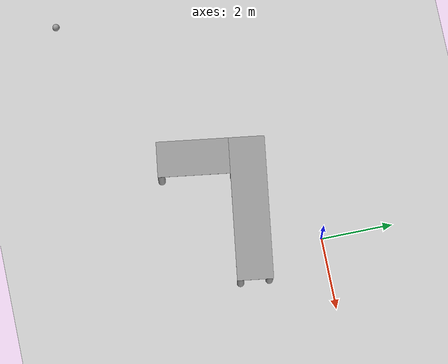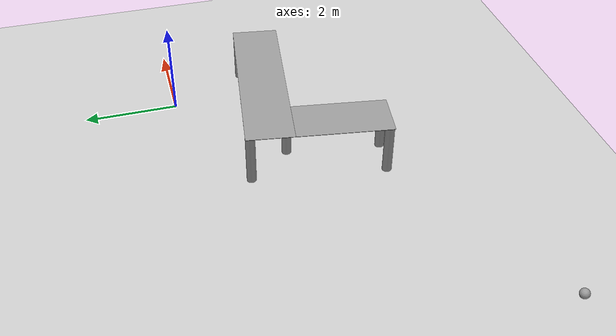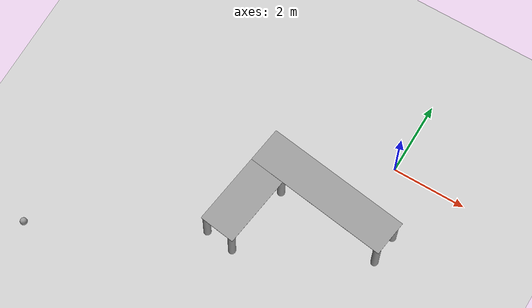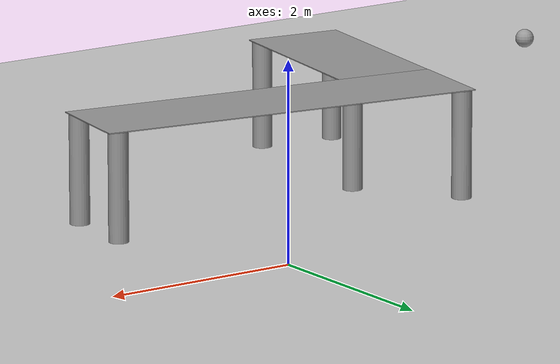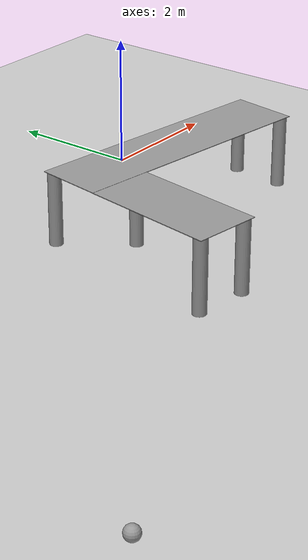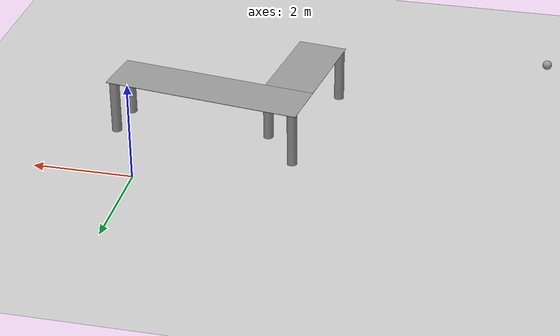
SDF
<sdf version="1.6">
 <world name="default">
  <model name="ground_plane">
   <static>1</static>
   <link name="link">
    <collision name="collision">
     <geometry><plane><normal>0 0 1</normal><size>100 100</size></plane></geometry>
     <surface>
      <contact><collide_bitmask>65535</collide_bitmask></contact>
      <friction><ode><mu>100</mu><mu2>50</mu2></ode></friction>
     </surface>
    </collision>
    <visual name="visual">
     <cast_shadows>0</cast_shadows>
     <geometry><plane><normal>0 0 1</normal><size>100 100</size></plane></geometry>
     <material>
      <script><uri>file://media/materials/scripts/gazebo.material</uri><name>Gazebo/Grey</name></script>
     </material>
    </visual>
   </link>
  </model>
  <model name="mytable_clone">
   <link name="link_0">
    <pose>-0.78753 0.46744 0.418 0 -0 0</pose>
    <inertial>
     <mass>1</mass>
     <inertia>
      <ixx>0.166667</ixx>
      <ixy>0</ixy>
      <ixz>0</ixz>
      <iyy>0.166667</iyy>
      <iyz>0</iyz>
      <izz>0.166667</izz>
     </inertia>
    </inertial>
    <visual name="visual">
     <geometry><box><size>1 4 0.01</size></box></geometry>
     <material>
      <lighting>1</lighting>
      <script><uri>file://media/materials/scripts/gazebo.material</uri><name>Gazebo/Grey</name></script>
      <shader type="pixel"><normal_map>__default__</normal_map></shader>
      <ambient>0.3 0.3 0.3 1</ambient>
      <diffuse>0.7 0.7 0.7 1</diffuse>
      <specular>0.01 0.01 0.01 1</specular>
      <emissive>0 0 0 1</emissive>
     </material>
    </visual>
    <collision name="collision">
     <geometry><box><size>1 4 0.01</size></box></geometry>
     <surface>
      <friction>
       <ode><mu>1</mu><mu2>1</mu2><fdir1>0 0 0</fdir1><slip1>0</slip1><slip2>0</slip2></ode>
       <torsional>
        <coefficient>1</coefficient>
        <patch_radius>0</patch_radius>
        <surface_radius>0</surface_radius>
        <use_patch_radius>1</use_patch_radius>
        <ode><slip>0</slip></ode>
       </torsional>
      </friction>
      <bounce><restitution_coefficient>0</restitution_coefficient><threshold>1e+06</threshold></bounce>
      <contact>
       <collide_without_contact>0</collide_without_contact>
       <collide_without_contact_bitmask>1</collide_without_contact_bitmask>
       <collide_bitmask>1</collide_bitmask>
       <ode>
        <soft_cfm>0</soft_cfm>
        <soft_erp>0.2</soft_erp>
        <kp>1e+13</kp>
        <kd>1</kd>
        <max_vel>0.01</max_vel>
        <min_depth>0</min_depth>
       </ode>
       <bullet>
        <split_impulse>1</split_impulse>
        <split_impulse_penetration_threshold>-0.01</split_impulse_penetration_threshold>
        <soft_cfm>0</soft_cfm>
        <soft_erp>0.2</soft_erp>
        <kp>1e+13</kp>
        <kd>1</kd>
       </bullet>
      </contact>
     </surface>
    </collision>
   </link>
   <link name="link_0_clone">
    <pose>0.712518 -1.03246 0.416 0 -0 1.5707</pose>
    <inertial>
     <mass>1</mass>
     <inertia>
      <ixx>0.166667</ixx>
      <ixy>0</ixy>
      <ixz>0</ixz>
      <iyy>0.166667</iyy>
      <iyz>0</iyz>
      <izz>0.166667</izz>
     </inertia>
    </inertial>
    <visual name="visual">
     <geometry><box><size>1 2 0.01</size></box></geometry>
     <material>
      <lighting>1</lighting>
      <script><uri>file://media/materials/scripts/gazebo.material</uri><name>Gazebo/Grey</name></script>
      <shader type="pixel"><normal_map>__default__</normal_map></shader>
      <ambient>0.3 0.3 0.3 1</ambient>
      <diffuse>0.7 0.7 0.7 1</diffuse>
      <specular>0.01 0.01 0.01 1</specular>
      <emissive>0 0 0 1</emissive>
     </material>
    </visual>
    <collision name="collision">
     <geometry><box><size>1 2 0.01</size></box></geometry>
     <surface>
      <friction>
       <ode><mu>1</mu><mu2>1</mu2><fdir1>0 0 0</fdir1><slip1>0</slip1><slip2>0</slip2></ode>
       <torsional>
        <coefficient>1</coefficient>
        <patch_radius>0</patch_radius>
        <surface_radius>0</surface_radius>
        <use_patch_radius>1</use_patch_radius>
        <ode><slip>0</slip></ode>
       </torsional>
      </friction>
      <bounce><restitution_coefficient>0</restitution_coefficient><threshold>1e+06</threshold></bounce>
      <contact>
       <collide_without_contact>0</collide_without_contact>
       <collide_without_contact_bitmask>1</collide_without_contact_bitmask>
       <collide_bitmask>1</collide_bitmask>
       <ode>
        <soft_cfm>0</soft_cfm>
        <soft_erp>0.2</soft_erp>
        <kp>1e+13</kp>
        <kd>1</kd>
        <max_vel>0.01</max_vel>
        <min_depth>0</min_depth>
       </ode>
       <bullet>
        <split_impulse>1</split_impulse>
        <split_impulse_penetration_threshold>-0.01</split_impulse_penetration_threshold>
        <soft_cfm>0</soft_cfm>
        <soft_erp>0.2</soft_erp>
        <kp>1e+13</kp>
        <kd>1</kd>
       </bullet>
      </contact>
     </surface>
    </collision>
   </link>
   <link name="link_1">
    <pose>-1.18753 2.32744 -0.139 0 -0 0</pose>
    <inertial>
     <mass>1</mass>
     <inertia><ixx>0.145833</ixx><ixy>0</ixy><ixz>0</ixz><iyy>0.145833</iyy><iyz>0</iyz><izz>0.125</izz></inertia>
    </inertial>
    <visual name="visual">
     <geometry><cylinder><radius>0.1</radius><length>1.1</length></cylinder></geometry>
     <material>
      <lighting>1</lighting>
      <script><uri>file://media/materials/scripts/gazebo.material</uri><name>Gazebo/Grey</name></script>
      <shader type="pixel"><normal_map>__default__</normal_map></shader>
      <ambient>0.3 0.3 0.3 1</ambient>
      <diffuse>0.7 0.7 0.7 1</diffuse>
      <specular>0.01 0.01 0.01 1</specular>
      <emissive>0 0 0 1</emissive>
     </material>
    </visual>
    <collision name="collision">
     <geometry><cylinder><radius>0.1</radius><length>1.1</length></cylinder></geometry>
     <surface>
      <friction>
       <ode><mu>1</mu><mu2>1</mu2><fdir1>0 0 0</fdir1><slip1>0</slip1><slip2>0</slip2></ode>
       <torsional>
        <coefficient>1</coefficient>
        <patch_radius>0</patch_radius>
        <surface_radius>0</surface_radius>
        <use_patch_radius>1</use_patch_radius>
        <ode><slip>0</slip></ode>
       </torsional>
      </friction>
      <bounce><restitution_coefficient>0</restitution_coefficient><threshold>1e+06</threshold></bounce>
      <contact>
       <collide_without_contact>0</collide_without_contact>
       <collide_without_contact_bitmask>1</collide_without_contact_bitmask>
       <collide_bitmask>1</collide_bitmask>
       <ode>
        <soft_cfm>0</soft_cfm>
        <soft_erp>0.2</soft_erp>
        <kp>1e+13</kp>
        <kd>1</kd>
        <max_vel>0.01</max_vel>
        <min_depth>0</min_depth>
       </ode>
       <bullet>
        <split_impulse>1</split_impulse>
        <split_impulse_penetration_threshold>-0.01</split_impulse_penetration_threshold>
        <soft_cfm>0</soft_cfm>
        <soft_erp>0.2</soft_erp>
        <kp>1e+13</kp>
        <kd>1</kd>
       </bullet>
      </contact>
     </surface>
    </collision>
   </link>
   <link name="link_1_clone">
    <pose>-1.18753 -1.43256 -0.139 0 -0 0</pose>
    <inertial>
     <mass>1</mass>
     <inertia><ixx>0.145833</ixx><ixy>0</ixy><ixz>0</ixz><iyy>0.145833</iyy><iyz>0</iyz><izz>0.125</izz></inertia>
    </inertial>
    <visual name="visual">
     <geometry><cylinder><radius>0.1</radius><length>1.1</length></cylinder></geometry>
     <material>
      <lighting>1</lighting>
      <script><uri>file://media/materials/scripts/gazebo.material</uri><name>Gazebo/Grey</name></script>
      <shader type="pixel"><normal_map>__default__</normal_map></shader>
      <ambient>0.3 0.3 0.3 1</ambient>
      <diffuse>0.7 0.7 0.7 1</diffuse>
      <specular>0.01 0.01 0.01 1</specular>
      <emissive>0 0 0 1</emissive>
     </material>
    </visual>
    <collision name="collision">
     <geometry><cylinder><radius>0.1</radius><length>1.1</length></cylinder></geometry>
     <surface>
      <friction>
       <ode><mu>1</mu><mu2>1</mu2><fdir1>0 0 0</fdir1><slip1>0</slip1><slip2>0</slip2></ode>
       <torsional>
        <coefficient>1</coefficient>
        <patch_radius>0</patch_radius>
        <surface_radius>0</surface_radius>
        <use_patch_radius>1</use_patch_radius>
        <ode><slip>0</slip></ode>
       </torsional>
      </friction>
      <bounce><restitution_coefficient>0</restitution_coefficient><threshold>1e+06</threshold></bounce>
      <contact>
       <collide_without_contact>0</collide_without_contact>
       <collide_without_contact_bitmask>1</collide_without_contact_bitmask>
       <collide_bitmask>1</collide_bitmask>
       <ode>
        <soft_cfm>0</soft_cfm>
        <soft_erp>0.2</soft_erp>
        <kp>1e+13</kp>
        <kd>1</kd>
        <max_vel>0.01</max_vel>
        <min_depth>0</min_depth>
       </ode>
       <bullet>
        <split_impulse>1</split_impulse>
        <split_impulse_penetration_threshold>-0.01</split_impulse_penetration_threshold>
        <soft_cfm>0</soft_cfm>
        <soft_erp>0.2</soft_erp>
        <kp>1e+13</kp>
        <kd>1</kd>
       </bullet>
      </contact>
     </surface>
    </collision>
   </link>
   <link name="link_1_clone_0">
    <pose>1.61257 -1.43256 -0.139 0 -0 0</pose>
    <inertial>
     <mass>1</mass>
     <inertia><ixx>0.145833</ixx><ixy>0</ixy><ixz>0</ixz><iyy>0.145833</iyy><iyz>0</iyz><izz>0.125</izz></inertia>
    </inertial>
    <visual name="visual">
     <geometry><cylinder><radius>0.1</radius><length>1.1</length></cylinder></geometry>
     <material>
      <lighting>1</lighting>
      <script><uri>file://media/materials/scripts/gazebo.material</uri><name>Gazebo/Grey</name></script>
      <shader type="pixel"><normal_map>__default__</normal_map></shader>
      <ambient>0.3 0.3 0.3 1</ambient>
      <diffuse>0.7 0.7 0.7 1</diffuse>
      <specular>0.01 0.01 0.01 1</specular>
      <emissive>0 0 0 1</emissive>
     </material>
    </visual>
    <collision name="collision">
     <geometry><cylinder><radius>0.1</radius><length>1.1</length></cylinder></geometry>
     <surface>
      <friction>
       <ode><mu>1</mu><mu2>1</mu2><fdir1>0 0 0</fdir1><slip1>0</slip1><slip2>0</slip2></ode>
       <torsional>
        <coefficient>1</coefficient>
        <patch_radius>0</patch_radius>
        <surface_radius>0</surface_radius>
        <use_patch_radius>1</use_patch_radius>
        <ode><slip>0</slip></ode>
       </torsional>
      </friction>
      <bounce><restitution_coefficient>0</restitution_coefficient><threshold>1e+06</threshold></bounce>
      <contact>
       <collide_without_contact>0</collide_without_contact>
       <collide_without_contact_bitmask>1</collide_without_contact_bitmask>
       <collide_bitmask>1</collide_bitmask>
       <ode>
        <soft_cfm>0</soft_cfm>
        <soft_erp>0.2</soft_erp>
        <kp>1e+13</kp>
        <kd>1</kd>
        <max_vel>0.01</max_vel>
        <min_depth>0</min_depth>
       </ode>
       <bullet>
        <split_impulse>1</split_impulse>
        <split_impulse_penetration_threshold>-0.01</split_impulse_penetration_threshold>
        <soft_cfm>0</soft_cfm>
        <soft_erp>0.2</soft_erp>
        <kp>1e+13</kp>
        <kd>1</kd>
       </bullet>
      </contact>
     </surface>
    </collision>
   </link>
   <link name="link_1_clone_1">
    <pose>1.61257 -0.632367 -0.139 0 -0 0</pose>
    <inertial>
     <mass>1</mass>
     <inertia><ixx>0.145833</ixx><ixy>0</ixy><ixz>0</ixz><iyy>0.145833</iyy><iyz>0</iyz><izz>0.125</izz></inertia>
    </inertial>
    <visual name="visual">
     <geometry><cylinder><radius>0.1</radius><length>1.1</length></cylinder></geometry>
     <material>
      <lighting>1</lighting>
      <script><uri>file://media/materials/scripts/gazebo.material</uri><name>Gazebo/Grey</name></script>
      <shader type="pixel"><normal_map>__default__</normal_map></shader>
      <ambient>0.3 0.3 0.3 1</ambient>
      <diffuse>0.7 0.7 0.7 1</diffuse>
      <specular>0.01 0.01 0.01 1</specular>
      <emissive>0 0 0 1</emissive>
     </material>
    </visual>
    <collision name="collision">
     <geometry><cylinder><radius>0.1</radius><length>1.1</length></cylinder></geometry>
     <surface>
      <friction>
       <ode><mu>1</mu><mu2>1</mu2><fdir1>0 0 0</fdir1><slip1>0</slip1><slip2>0</slip2></ode>
       <torsional>
        <coefficient>1</coefficient>
        <patch_radius>0</patch_radius>
        <surface_radius>0</surface_radius>
        <use_patch_radius>1</use_patch_radius>
        <ode><slip>0</slip></ode>
       </torsional>
      </friction>
      <bounce><restitution_coefficient>0</restitution_coefficient><threshold>1e+06</threshold></bounce>
      <contact>
       <collide_without_contact>0</collide_without_contact>
       <collide_without_contact_bitmask>1</collide_without_contact_bitmask>
       <collide_bitmask>1</collide_bitmask>
       <ode>
        <soft_cfm>0</soft_cfm>
        <soft_erp>0.2</soft_erp>
        <kp>1e+13</kp>
        <kd>1</kd>
        <max_vel>0.01</max_vel>
        <min_depth>0</min_depth>
       </ode>
       <bullet>
        <split_impulse>1</split_impulse>
        <split_impulse_penetration_threshold>-0.01</split_impulse_penetration_threshold>
        <soft_cfm>0</soft_cfm>
        <soft_erp>0.2</soft_erp>
        <kp>1e+13</kp>
        <kd>1</kd>
       </bullet>
      </contact>
     </surface>
    </collision>
   </link>
   <link name="link_1_clone_2">
    <pose>-0.38753 2.36744 -0.139 0 -0 0</pose>
    <inertial>
     <mass>1</mass>
     <inertia><ixx>0.145833</ixx><ixy>0</ixy><ixz>0</ixz><iyy>0.145833</iyy><iyz>0</iyz><izz>0.125</izz></inertia>
    </inertial>
    <visual name="visual">
     <geometry><cylinder><radius>0.1</radius><length>1.1</length></cylinder></geometry>
     <material>
      <lighting>1</lighting>
      <script><uri>file://media/materials/scripts/gazebo.material</uri><name>Gazebo/Grey</name></script>
      <shader type="pixel"><normal_map>__default__</normal_map></shader>
      <ambient>0.3 0.3 0.3 1</ambient>
      <diffuse>0.7 0.7 0.7 1</diffuse>
      <specular>0.01 0.01 0.01 1</specular>
      <emissive>0 0 0 1</emissive>
     </material>
    </visual>
    <collision name="collision">
     <geometry><cylinder><radius>0.1</radius><length>1.1</length></cylinder></geometry>
     <surface>
      <friction>
       <ode><mu>1</mu><mu2>1</mu2><fdir1>0 0 0</fdir1><slip1>0</slip1><slip2>0</slip2></ode>
       <torsional>
        <coefficient>1</coefficient>
        <patch_radius>0</patch_radius>
        <surface_radius>0</surface_radius>
        <use_patch_radius>1</use_patch_radius>
        <ode><slip>0</slip></ode>
       </torsional>
      </friction>
      <bounce><restitution_coefficient>0</restitution_coefficient><threshold>1e+06</threshold></bounce>
      <contact>
       <collide_without_contact>0</collide_without_contact>
       <collide_without_contact_bitmask>1</collide_without_contact_bitmask>
       <collide_bitmask>1</collide_bitmask>
       <ode>
        <soft_cfm>0</soft_cfm>
        <soft_erp>0.2</soft_erp>
        <kp>1e+13</kp>
        <kd>1</kd>
        <max_vel>0.01</max_vel>
        <min_depth>0</min_depth>
       </ode>
       <bullet>
        <split_impulse>1</split_impulse>
        <split_impulse_penetration_threshold>-0.01</split_impulse_penetration_threshold>
        <soft_cfm>0</soft_cfm>
        <soft_erp>0.2</soft_erp>
        <kp>1e+13</kp>
        <kd>1</kd>
       </bullet>
      </contact>
     </surface>
    </collision>
   </link>
   <link name="link_1_clone_3">
    <pose>-0.38753 -0.632367 -0.139 0 -0 0</pose>
    <inertial>
     <mass>1</mass>
     <inertia><ixx>0.145833</ixx><ixy>0</ixy><ixz>0</ixz><iyy>0.145833</iyy><iyz>0</iyz><izz>0.125</izz></inertia>
    </inertial>
    <visual name="visual">
     <geometry><cylinder><radius>0.1</radius><length>1.1</length></cylinder></geometry>
     <material>
      <lighting>1</lighting>
      <script><uri>file://media/materials/scripts/gazebo.material</uri><name>Gazebo/Grey</name></script>
      <shader type="pixel"><normal_map>__default__</normal_map></shader>
      <ambient>0.3 0.3 0.3 1</ambient>
      <diffuse>0.7 0.7 0.7 1</diffuse>
      <specular>0.01 0.01 0.01 1</specular>
      <emissive>0 0 0 1</emissive>
     </material>
    </visual>
    <collision name="collision">
     <geometry><cylinder><radius>0.1</radius><length>1.1</length></cylinder></geometry>
     <surface>
      <friction>
       <ode><mu>1</mu><mu2>1</mu2><fdir1>0 0 0</fdir1><slip1>0</slip1><slip2>0</slip2></ode>
       <torsional>
        <coefficient>1</coefficient>
        <patch_radius>0</patch_radius>
        <surface_radius>0</surface_radius>
        <use_patch_radius>1</use_patch_radius>
        <ode><slip>0</slip></ode>
       </torsional>
      </friction>
      <bounce><restitution_coefficient>0</restitution_coefficient><threshold>1e+06</threshold></bounce>
      <contact>
       <collide_without_contact>0</collide_without_contact>
       <collide_without_contact_bitmask>1</collide_without_contact_bitmask>
       <collide_bitmask>1</collide_bitmask>
       <ode>
        <soft_cfm>0</soft_cfm>
        <soft_erp>0.2</soft_erp>
        <kp>1e+13</kp>
        <kd>1</kd>
        <max_vel>0.01</max_vel>
        <min_depth>0</min_depth>
       </ode>
       <bullet>
        <split_impulse>1</split_impulse>
        <split_impulse_penetration_threshold>-0.01</split_impulse_penetration_threshold>
        <soft_cfm>0</soft_cfm>
        <soft_erp>0.2</soft_erp>
        <kp>1e+13</kp>
        <kd>1</kd>
       </bullet>
      </contact>
     </surface>
    </collision>
   </link>
   <joint name="link_0_JOINT_0" type="fixed">
    <parent>link_1</parent>
    <child>link_0</child>
    <physics>
     <ode><limit><cfm>0</cfm><erp>0.2</erp></limit><suspension><cfm>0</cfm><erp>0.2</erp></suspension></ode>
    </physics>
   </joint>
   <joint name="link_0_JOINT_2" type="fixed">
    <parent>link_0</parent>
    <child>link_0_clone</child>
    <physics>
     <ode><limit><cfm>0</cfm><erp>0.2</erp></limit><suspension><cfm>0</cfm><erp>0.2</erp></suspension></ode>
    </physics>
   </joint>
   <joint name="link_0_JOINT_3" type="fixed">
    <parent>link_0</parent>
    <child>link_1_clone_2</child>
    <physics>
     <ode><limit><cfm>0</cfm><erp>0.2</erp></limit><suspension><cfm>0</cfm><erp>0.2</erp></suspension></ode>
    </physics>
   </joint>
   <joint name="link_0_JOINT_4" type="fixed">
    <parent>link_0</parent>
    <child>link_1_clone</child>
    <physics>
     <ode><limit><cfm>0</cfm><erp>0.2</erp></limit><suspension><cfm>0</cfm><erp>0.2</erp></suspension></ode>
    </physics>
   </joint>
   <joint name="link_0_clone_JOINT_5" type="fixed">
    <parent>link_0_clone</parent>
    <child>link_1_clone_0</child>
    <physics>
     <ode><limit><cfm>0</cfm><erp>0.2</erp></limit><suspension><cfm>0</cfm><erp>0.2</erp></suspension></ode>
    </physics>
   </joint>
   <joint name="link_0_clone_JOINT_6" type="fixed">
    <parent>link_0_clone</parent>
    <child>link_1_clone_1</child>
    <physics>
     <ode><limit><cfm>0</cfm><erp>0.2</erp></limit><suspension><cfm>0</cfm><erp>0.2</erp></suspension></ode>
    </physics>
   </joint>
   <joint name="link_0_clone_JOINT_7" type="fixed">
    <parent>link_0_clone</parent>
    <child>link_1_clone_3</child>
    <physics>
     <ode><limit><cfm>0</cfm><erp>0.2</erp></limit><suspension><cfm>0</cfm><erp>0.2</erp></suspension></ode>
    </physics>
   </joint>
   <static>0</static>
   <pose>-1.63263 -2.5072 0.688996 2e-06 -0 -1.71082</pose>
  </model>
  <model name="my_ball">
   <link name="link_0">
    <inertial>
     <mass>1</mass>
     <inertia><ixx>0.1</ixx><ixy>0</ixy><ixz>0</ixz><iyy>0.1</iyy><iyz>0</iyz><izz>0.1</izz></inertia>
    </inertial>
    <visual name="visual">
     <geometry><sphere><radius>0.1</radius></sphere></geometry>
     <material>
      <lighting>1</lighting>
      <script><uri>file://media/materials/scripts/gazebo.material</uri><name>Gazebo/Grey</name></script>
      <shader type="pixel"><normal_map>__default__</normal_map></shader>
      <ambient>1 1 1 1</ambient>
      <diffuse>1 1 1 1</diffuse>
      <specular>1 1 1 1</specular>
      <emissive>1 1 1 1</emissive>
     </material>
    </visual>
    <collision name="collision">
     <geometry><sphere><radius>0.1</radius></sphere></geometry>
     <surface>
      <friction>
       <ode><mu>1</mu><mu2>1</mu2><fdir1>0 0 0</fdir1><slip1>0</slip1><slip2>0</slip2></ode>
       <torsional>
        <coefficient>1</coefficient>
        <patch_radius>0</patch_radius>
        <surface_radius>0</surface_radius>
        <use_patch_radius>1</use_patch_radius>
        <ode><slip>0</slip></ode>
       </torsional>
      </friction>
      <bounce><restitution_coefficient>0</restitution_coefficient><threshold>1e+06</threshold></bounce>
      <contact>
       <collide_without_contact>0</collide_without_contact>
       <collide_without_contact_bitmask>1</collide_without_contact_bitmask>
       <collide_bitmask>1</collide_bitmask>
       <ode>
        <soft_cfm>0</soft_cfm>
        <soft_erp>0.2</soft_erp>
        <kp>1e+13</kp>
        <kd>1</kd>
        <max_vel>0.01</max_vel>
        <min_depth>0</min_depth>
       </ode>
       <bullet>
        <split_impulse>1</split_impulse>
        <split_impulse_penetration_threshold>-0.01</split_impulse_penetration_threshold>
        <soft_cfm>0</soft_cfm>
        <soft_erp>0.2</soft_erp>
        <kp>1e+13</kp>
        <kd>1</kd>
       </bullet>
      </contact>
     </surface>
    </collision>
   </link>
   <static>0</static>
   <pose>-7.41521 -6.08043 0.1 0 -0 0</pose>
  </model>
 </world>
</sdf>
